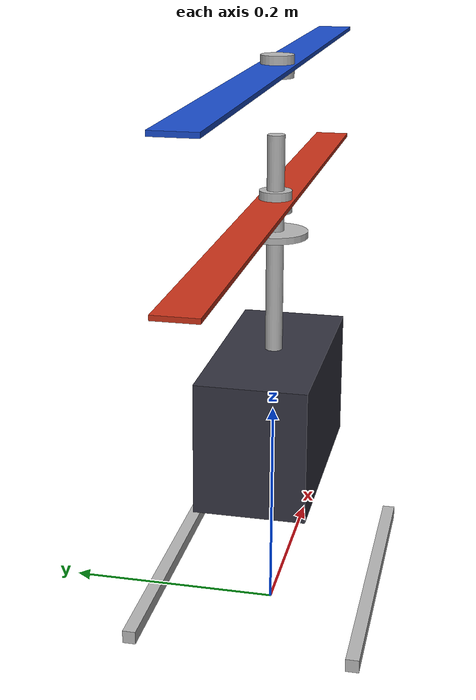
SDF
<?xml version="1.0" encoding="UTF-8"?>
<sdf version="1.9">
  <model name="coaxial">
    <pose>0 0 0.2 0 0 0</pose>
    <self_collide>false</self_collide>
    <static>false</static>
    <link name="base_link">
      <inertial>
        <mass>1.9</mass>
        <inertia>
          <ixx>0.03</ixx><ixy>0</ixy><ixz>0</ixz>
          <iyy>0.035</iyy><iyz>0</iyz>
          <izz>0.015</izz>
        </inertia>
      </inertial>
      <gravity>true</gravity>
      <velocity_decay />
      <visual name="fuselage_visual">
        <geometry>
          <box>
            <size>0.22 0.1 0.12</size>
          </box>
        </geometry>
        <material>
          <diffuse>0.2 0.2 0.25 1</diffuse>
        </material>
      </visual>
      <visual name="mast_visual">
        <pose>0 0 0.16 0 0 0</pose>
        <geometry>
          <cylinder>
            <radius>0.008</radius>
            <length>0.2</length>
          </cylinder>
        </geometry>
      </visual>
      <visual name="swashplate_visual">
        <pose>0 0 0.17 0 0 0</pose>
        <geometry>
          <cylinder>
            <radius>0.03</radius>
            <length>0.006</length>
          </cylinder>
        </geometry>
      </visual>
      <visual name="skid_left_visual">
        <pose>0 0.1 -0.17 0 0 0</pose>
        <geometry>
          <box>
            <size>0.3 0.012 0.012</size>
          </box>
        </geometry>
      </visual>
      <visual name="skid_right_visual">
        <pose>0 -0.1 -0.17 0 0 0</pose>
        <geometry>
          <box>
            <size>0.3 0.012 0.012</size>
          </box>
        </geometry>
      </visual>
      <collision name="fuselage_collision">
        <geometry>
          <box>
            <size>0.22 0.1 0.12</size>
          </box>
        </geometry>
      </collision>
      <collision name="skid_left_collision">
        <pose>0 0.1 -0.17 0 0 0</pose>
        <geometry>
          <box>
            <size>0.3 0.012 0.012</size>
          </box>
        </geometry>
        <surface>
          <contact>
            <ode>
              <min_depth>0.001</min_depth>
              <max_vel>0</max_vel>
            </ode>
          </contact>
          <friction>
            <ode />
          </friction>
        </surface>
      </collision>
      <collision name="skid_right_collision">
        <pose>0 -0.1 -0.17 0 0 0</pose>
        <geometry>
          <box>
            <size>0.3 0.012 0.012</size>
          </box>
        </geometry>
        <surface>
          <contact>
            <ode>
              <min_depth>0.001</min_depth>
              <max_vel>0</max_vel>
            </ode>
          </contact>
          <friction>
            <ode />
          </friction>
        </surface>
      </collision>
      <sensor name="air_pressure_sensor" type="air_pressure">
        <gz_frame_id>base_link</gz_frame_id>
        <always_on>1</always_on>
        <update_rate>50</update_rate>
        <air_pressure>
          <!-- Noise modeled after BMP390 -->
          <pressure>
            <noise type="gaussian">
              <mean>0</mean>
              <stddev>3</stddev>
            </noise>
          </pressure>
        </air_pressure>
      </sensor>
      <sensor name="magnetometer_sensor" type="magnetometer">
        <gz_frame_id>base_link</gz_frame_id>
        <always_on>1</always_on>
        <update_rate>100</update_rate>
        <magnetometer>
          <!-- TODO: update to fix units and coordinate system when we move past Harmonic -->
          <!-- See https://github.com/gazebosim/gz-sim/pull/2460 -->
          <!-- 3mgauss RMS: NOTE: noise is in tesla but sensor reports data in gauss -->
          <!-- Noise modeled after IIS2MDC -->
          <x>
            <noise type="gaussian">
              <stddev>0.0001</stddev>
            </noise>
          </x>
          <y>
            <noise type="gaussian">
              <stddev>0.0001</stddev>
            </noise>
          </y>
          <z>
            <noise type="gaussian">
              <stddev>0.0001</stddev>
            </noise>
          </z>
        </magnetometer>
      </sensor>
      <sensor name="imu_sensor" type="imu">
        <gz_frame_id>base_link</gz_frame_id>
        <always_on>1</always_on>
        <update_rate>250</update_rate>
        <imu>
          <angular_velocity>
            <!-- Noise modeled after IIM42653 -->
            <!-- 0.05 deg/s converted to rad/s -->
            <x>
              <noise type="gaussian">
                <mean>0.0</mean>
                <stddev>0.0008726646</stddev>
              </noise>
            </x>
            <y>
              <noise type="gaussian">
                <mean>0.0</mean>
                <stddev>0.0008726646</stddev>
              </noise>
            </y>
            <z>
              <noise type="gaussian">
                <mean>0.0</mean>
                <stddev>0.0008726646</stddev>
              </noise>
            </z>
          </angular_velocity>
          <linear_acceleration>
            <!-- Noise modeled after IIM42653 -->
            <!-- X & Y axis: 0.65 mg-rms converted to m/ss -->
            <x>
              <noise type="gaussian">
                <mean>0.0</mean>
                <stddev>0.00637</stddev>
              </noise>
            </x>
            <y>
              <noise type="gaussian">
                <mean>0.0</mean>
                <stddev>0.00637</stddev>
              </noise>
            </y>
            <!-- Z axis: 0.70 mg-rms converted to m/ss-->
            <z>
              <noise type="gaussian">
                <mean>0.0</mean>
                <stddev>0.00686</stddev>
              </noise>
            </z>
          </linear_acceleration>
        </imu>
      </sensor>
      <sensor name="navsat_sensor" type="navsat">
        <gz_frame_id>base_link</gz_frame_id>
        <always_on>1</always_on>
        <update_rate>30</update_rate>
      </sensor>
    </link>
    <link name="rotor_lower">
      <pose>0 0 0.2 0 0 0</pose>
      <inertial>
        <mass>0.05</mass>
        <inertia>
          <ixx>1e-5</ixx><ixy>0</ixy><ixz>0</ixz>
          <iyy>2e-3</iyy><iyz>0</iyz>
          <izz>2e-3</izz>
        </inertia>
      </inertial>
      <visual name="rotor_lower_blades">
        <geometry>
          <box>
            <size>0.7 0.035 0.004</size>
          </box>
        </geometry>
        <material>
          <diffuse>0.8 0.2 0.1 1</diffuse>
          <specular>0.1 0.1 0.1 1</specular>
        </material>
      </visual>
      <visual name="rotor_lower_hub">
        <geometry>
          <cylinder>
            <radius>0.015</radius>
            <length>0.02</length>
          </cylinder>
        </geometry>
      </visual>
    </link>
    <joint name="rotor_lower_joint" type="revolute">
      <parent>base_link</parent>
      <child>rotor_lower</child>
      <axis>
        <xyz>0 0 1</xyz>
        <limit>
          <lower>-1e+16</lower>
          <upper>1e+16</upper>
        </limit>
        <dynamics>
          <spring_reference>0</spring_reference>
          <spring_stiffness>0</spring_stiffness>
        </dynamics>
      </axis>
    </joint>
    <link name="rotor_upper">
      <pose>0 0 0.32 0 0 0</pose>
      <inertial>
        <mass>0.05</mass>
        <inertia>
          <ixx>1e-5</ixx><ixy>0</ixy><ixz>0</ixz>
          <iyy>2e-3</iyy><iyz>0</iyz>
          <izz>2e-3</izz>
        </inertia>
      </inertial>
      <visual name="rotor_upper_blades">
        <geometry>
          <box>
            <size>0.7 0.035 0.004</size>
          </box>
        </geometry>
        <material>
          <diffuse>0.1 0.3 0.8 1</diffuse>
          <specular>0.1 0.1 0.1 1</specular>
        </material>
      </visual>
      <visual name="rotor_upper_hub">
        <geometry>
          <cylinder>
            <radius>0.015</radius>
            <length>0.02</length>
          </cylinder>
        </geometry>
      </visual>
    </link>
    <joint name="rotor_upper_joint" type="revolute">
      <parent>base_link</parent>
      <child>rotor_upper</child>
      <axis>
        <xyz>0 0 1</xyz>
        <limit>
          <lower>-1e+16</lower>
          <upper>1e+16</upper>
        </limit>
        <dynamics>
          <spring_reference>0</spring_reference>
          <spring_stiffness>0</spring_stiffness>
        </dynamics>
      </axis>
    </joint>
    <plugin filename="libCoaxialRotorModelPlugin.so" name="px4::CoaxialRotorModel">
      <base_link>base_link</base_link>
      <command_topic>command/motor_speed</command_topic>
      <air_density>1.225</air_density>
      <fuselage_drag_area>0.012 0.02 0.03</fuselage_drag_area>
      <!-- Clockwise upper rotor, fixed pitch -->
      <rotor name="upper">
        <joint_name>rotor_upper_joint</joint_name>
        <turning_direction>cw</turning_direction>
        <actuator_number>0</actuator_number>
        <collective_pitch>0.14</collective_pitch>
        <num_blades>2</num_blades>
        <radius>0.35</radius>
        <chord>0.035</chord>
        <root_cutout>0.15</root_cutout>
        <tip_loss>0.97</tip_loss>
        <lift_slope>5.7</lift_slope>
        <max_lift_coefficient>1.2</max_lift_coefficient>
        <profile_drag>0.012</profile_drag>
        <drag_alpha2>0.5</drag_alpha2>
        <twist>0</twist>
        <blade_mass>0.03</blade_mass>
        <flap_stiffness>5.0</flap_stiffness>
        <hub_inertia>2e-4</hub_inertia>
        <motor_time_constant>0.05</motor_time_constant>
        <max_motor_torque>1.5</max_motor_torque>
        <max_rot_velocity>330</max_rot_velocity>
      </rotor>
      <!-- Counter-clockwise lower rotor with a 3 servo swash plate for cyclic -->
      <rotor name="lower">
        <joint_name>rotor_lower_joint</joint_name>
        <turning_direction>ccw</turning_direction>
        <actuator_number>1</actuator_number>
        <collective_pitch>0.18</collective_pitch>
        <num_blades>2</num_blades>
        <radius>0.35</radius>
        <chord>0.035</chord>
        <root_cutout>0.15</root_cutout>
        <tip_loss>0.97</tip_loss>
        <lift_slope>5.7</lift_slope>
        <max_lift_coefficient>1.2</max_lift_coefficient>
        <profile_drag>0.012</profile_drag>
        <drag_alpha2>0.5</drag_alpha2>
        <twist>0</twist>
        <blade_mass>0.03</blade_mass>
        <flap_stiffness>5.0</flap_stiffness>
        <hub_inertia>2e-4</hub_inertia>
        <motor_time_constant>0.05</motor_time_constant>
        <max_motor_torque>1.5</max_motor_torque>
        <max_rot_velocity>330</max_rot_velocity>
        <swashplate>
          <pitch_link_radius>0.03</pitch_link_radius>
          <pitch_horn_length>0.04</pitch_horn_length>
          <phase_angle>80</phase_angle>
          <servo_time_constant>0.02</servo_time_constant>
          <servo>
            <index>0</index>
            <azimuth>0</azimuth>
            <radius>0.03</radius>
            <horn_length>0.015</horn_length>
          </servo>
          <servo>
            <index>1</index>
            <azimuth>120</azimuth>
            <radius>0.03</radius>
            <horn_length>0.015</horn_length>
          </servo>
          <servo>
            <index>2</index>
            <azimuth>240</azimuth>
            <radius>0.03</radius>
            <horn_length>0.015</horn_length>
          </servo>
        </swashplate>
      </rotor>
    </plugin>
  </model>
</sdf>
